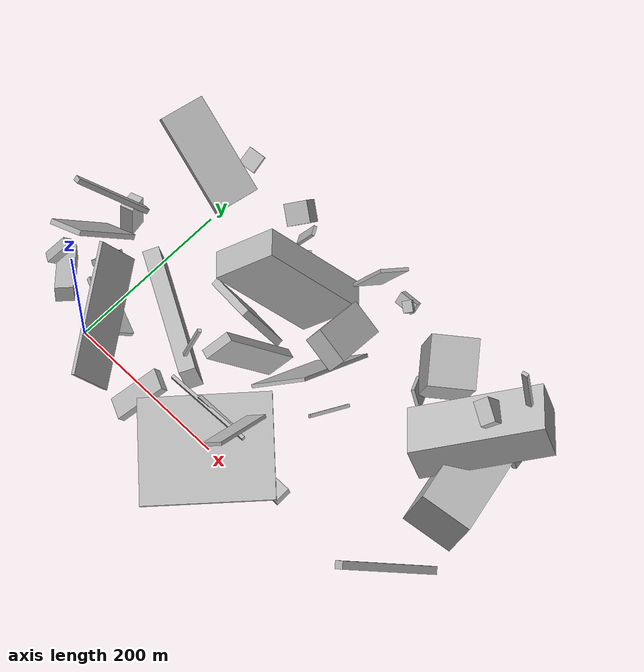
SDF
<sdf version="1.6">
 <world name="default">
  <model name="building_3">
   <static>0</static>
   <pose>-33.45436912153165 230.17576862455167 73.31850777323224 0.3727135399607054 0.11349348600995185 1.412369722167149</pose>
   <link name="link">
    <gravity>0</gravity>
    <pose>0 0 3.5 0 0 0</pose>
    <collision name="collision"><geometry><box><size>56 123 7</size></box></geometry></collision>
    <visual name="visual">
     <cast_shadows>0</cast_shadows>
     <geometry><box><size>56 123 7</size></box></geometry>
     <material>
      <script>
       <uri>model://HANNAS_wall/materials/scripts</uri>
       <uri>model://HANNAS_wall/materials/textures</uri>
       <name>vrc/HANNAS_wall</name>
      </script>
     </material>
    </visual>
   </link>
  </model>
  <model name="building_5">
   <static>0</static>
   <pose>142.85327700783975 39.52325204706015 145.23705242228914 1.280907169033283 0.01810961757745231 -0.5612329467302555</pose>
   <link name="link">
    <gravity>0</gravity>
    <pose>0 0 2.0 0 0 0</pose>
    <collision name="collision"><geometry><box><size>4 62 4</size></box></geometry></collision>
    <visual name="visual">
     <cast_shadows>0</cast_shadows>
     <geometry><box><size>4 62 4</size></box></geometry>
     <material>
      <script>
       <uri>model://HANNAS_wall/materials/scripts</uri>
       <uri>model://HANNAS_wall/materials/textures</uri>
       <name>vrc/HANNAS_wall</name>
      </script>
     </material>
    </visual>
   </link>
  </model>
  <model name="building_6">
   <static>0</static>
   <pose>78.80570475005405 77.71754553653787 50.86378117086528 -1.7116430482821283 -0.03186903567165388 2.6425681986003986</pose>
   <link name="link">
    <gravity>0</gravity>
    <pose>0 0 9.5 0 0 0</pose>
    <collision name="collision"><geometry><box><size>150 59 19</size></box></geometry></collision>
    <visual name="visual">
     <cast_shadows>0</cast_shadows>
     <geometry><box><size>150 59 19</size></box></geometry>
     <material>
      <script>
       <uri>model://HANNAS_wall/materials/scripts</uri>
       <uri>model://HANNAS_wall/materials/textures</uri>
       <name>vrc/HANNAS_wall</name>
      </script>
     </material>
    </visual>
   </link>
  </model>
  <model name="building_8">
   <static>0</static>
   <pose>438.2225889534224 142.45855588870796 53.16546000439365 -0.19534811506327818 0.21938282123979377 0.2018659422022886</pose>
   <link name="link">
    <gravity>0</gravity>
    <pose>0 0 32.5 0 0 0</pose>
    <collision name="collision"><geometry><box><size>61 130 65</size></box></geometry></collision>
    <visual name="visual">
     <cast_shadows>0</cast_shadows>
     <geometry><box><size>61 130 65</size></box></geometry>
     <material>
      <script>
       <uri>model://HANNAS_wall/materials/scripts</uri>
       <uri>model://HANNAS_wall/materials/textures</uri>
       <name>vrc/HANNAS_wall</name>
      </script>
     </material>
    </visual>
   </link>
  </model>
  <model name="building_9">
   <static>0</static>
   <pose>137.71556875061566 187.60716228195224 101.18792000894734 -1.4174596327392661 -0.8753817501219343 -2.4795868003958756</pose>
   <link name="link">
    <gravity>0</gravity>
    <pose>0 0 16.5 0 0 0</pose>
    <collision name="collision"><geometry><box><size>150 79 33</size></box></geometry></collision>
    <visual name="visual">
     <cast_shadows>0</cast_shadows>
     <geometry><box><size>150 79 33</size></box></geometry>
     <material>
      <script>
       <uri>model://HANNAS_wall/materials/scripts</uri>
       <uri>model://HANNAS_wall/materials/textures</uri>
       <name>vrc/HANNAS_wall</name>
      </script>
     </material>
    </visual>
   </link>
  </model>
  <model name="building_10">
   <static>0</static>
   <pose>-50.394521470647916 15.155284843621246 123.65515928356237 3.0385037584570775 -0.8558316451944581 1.093673327598814</pose>
   <link name="link">
    <gravity>0</gravity>
    <pose>0 0 5.5 0 0 0</pose>
    <collision name="collision"><geometry><box><size>34 12 11</size></box></geometry></collision>
    <visual name="visual">
     <cast_shadows>0</cast_shadows>
     <geometry><box><size>34 12 11</size></box></geometry>
     <material>
      <script>
       <uri>model://HANNAS_wall/materials/scripts</uri>
       <uri>model://HANNAS_wall/materials/textures</uri>
       <name>vrc/HANNAS_wall</name>
      </script>
     </material>
    </visual>
   </link>
  </model>
  <model name="building_12">
   <static>0</static>
   <pose>259.83359692414336 43.775442859317806 43.80373781763082 -2.0262682859598393 1.4196153840681005 1.9339024607335913</pose>
   <link name="link">
    <gravity>0</gravity>
    <pose>0 0 75.0 0 0 0</pose>
    <collision name="collision"><geometry><box><size>4 122 150</size></box></geometry></collision>
    <visual name="visual">
     <cast_shadows>0</cast_shadows>
     <geometry><box><size>4 122 150</size></box></geometry>
     <material>
      <script>
       <uri>model://HANNAS_wall/materials/scripts</uri>
       <uri>model://HANNAS_wall/materials/textures</uri>
       <name>vrc/HANNAS_wall</name>
      </script>
     </material>
    </visual>
   </link>
  </model>
  <model name="building_13">
   <static>0</static>
   <pose>382.1035436500278 132.18899601815727 113.01465682198119 0.7676785232947504 -1.1351767725572959 -3.1060503086673377</pose>
   <link name="link">
    <gravity>0</gravity>
    <pose>0 0 75.0 0 0 0</pose>
    <collision name="collision"><geometry><box><size>47 61 150</size></box></geometry></collision>
    <visual name="visual">
     <cast_shadows>0</cast_shadows>
     <geometry><box><size>47 61 150</size></box></geometry>
     <material>
      <script>
       <uri>model://HANNAS_wall/materials/scripts</uri>
       <uri>model://HANNAS_wall/materials/textures</uri>
       <name>vrc/HANNAS_wall</name>
      </script>
     </material>
    </visual>
   </link>
  </model>
  <model name="building_14">
   <static>0</static>
   <pose>-64.0757844598814 238.8846978420041 52.170263882776126 1.2139885623244253 0.008279703154189343 1.2634060405201886</pose>
   <link name="link">
    <gravity>0</gravity>
    <pose>0 0 3.5 0 0 0</pose>
    <collision name="collision"><geometry><box><size>4 17 7</size></box></geometry></collision>
    <visual name="visual">
     <cast_shadows>0</cast_shadows>
     <geometry><box><size>4 17 7</size></box></geometry>
     <material>
      <script>
       <uri>model://HANNAS_wall/materials/scripts</uri>
       <uri>model://HANNAS_wall/materials/textures</uri>
       <name>vrc/HANNAS_wall</name>
      </script>
     </material>
    </visual>
   </link>
  </model>
  <model name="building_15">
   <static>0</static>
   <pose>-20.40798361964243 66.2478191595332 70.85472420865415 -2.4741347746388413 -0.5559452527561605 2.6770076364858846</pose>
   <link name="link">
    <gravity>0</gravity>
    <pose>0 0 6.0 0 0 0</pose>
    <collision name="collision"><geometry><box><size>7 38 12</size></box></geometry></collision>
    <visual name="visual">
     <cast_shadows>0</cast_shadows>
     <geometry><box><size>7 38 12</size></box></geometry>
     <material>
      <script>
       <uri>model://HANNAS_wall/materials/scripts</uri>
       <uri>model://HANNAS_wall/materials/textures</uri>
       <name>vrc/HANNAS_wall</name>
      </script>
     </material>
    </visual>
   </link>
  </model>
  <model name="building_17">
   <static>0</static>
   <pose>191.00007537196797 24.31515056236701 60.62441523934734 1.7347715206480638 0.3952863882778992 0.12440402981081881</pose>
   <link name="link">
    <gravity>0</gravity>
    <pose>0 0 2.0 0 0 0</pose>
    <collision name="collision"><geometry><box><size>50 10 4</size></box></geometry></collision>
    <visual name="visual">
     <cast_shadows>0</cast_shadows>
     <geometry><box><size>50 10 4</size></box></geometry>
     <material>
      <script>
       <uri>model://HANNAS_wall/materials/scripts</uri>
       <uri>model://HANNAS_wall/materials/textures</uri>
       <name>vrc/HANNAS_wall</name>
      </script>
     </material>
    </visual>
   </link>
  </model>
  <model name="building_18">
   <static>0</static>
   <pose>-66.0371015514298 129.370810808356 28.419078440074898 1.4527831985671145 0.2947839125589903 1.827157090015469</pose>
   <link name="link">
    <gravity>0</gravity>
    <pose>0 0 8.0 0 0 0</pose>
    <collision name="collision"><geometry><box><size>24 40 16</size></box></geometry></collision>
    <visual name="visual">
     <cast_shadows>0</cast_shadows>
     <geometry><box><size>24 40 16</size></box></geometry>
     <material>
      <script>
       <uri>model://HANNAS_wall/materials/scripts</uri>
       <uri>model://HANNAS_wall/materials/textures</uri>
       <name>vrc/HANNAS_wall</name>
      </script>
     </material>
    </visual>
   </link>
  </model>
  <model name="building_20">
   <static>0</static>
   <pose>244.96714735777 272.73651480837 40.046867954195726 0.024972503453130207 0.6855258279380012 -1.500709517938705</pose>
   <link name="link">
    <gravity>0</gravity>
    <pose>0 0 5.5 0 0 0</pose>
    <collision name="collision"><geometry><box><size>14 23 11</size></box></geometry></collision>
    <visual name="visual">
     <cast_shadows>0</cast_shadows>
     <geometry><box><size>14 23 11</size></box></geometry>
     <material>
      <script>
       <uri>model://HANNAS_wall/materials/scripts</uri>
       <uri>model://HANNAS_wall/materials/textures</uri>
       <name>vrc/HANNAS_wall</name>
      </script>
     </material>
    </visual>
   </link>
  </model>
  <model name="building_25">
   <static>0</static>
   <pose>133.73516469636587 227.17849984466665 34.35926892064466 -1.438960402990991 0.414709281429838 2.4201922617114815</pose>
   <link name="link">
    <gravity>0</gravity>
    <pose>0 0 37.0 0 0 0</pose>
    <collision name="collision"><geometry><box><size>20 31 74</size></box></geometry></collision>
    <visual name="visual">
     <cast_shadows>0</cast_shadows>
     <geometry><box><size>20 31 74</size></box></geometry>
     <material>
      <script>
       <uri>model://HANNAS_wall/materials/scripts</uri>
       <uri>model://HANNAS_wall/materials/textures</uri>
       <name>vrc/HANNAS_wall</name>
      </script>
     </material>
    </visual>
   </link>
  </model>
  <model name="building_26">
   <static>0</static>
   <pose>228.8736052841642 1.0478517770115587 110.26314084660282 0.8078980128127189 -0.6167805266581403 2.644276088023601</pose>
   <link name="link">
    <gravity>0</gravity>
    <pose>0 0 12.5 0 0 0</pose>
    <collision name="collision"><geometry><box><size>4 85 25</size></box></geometry></collision>
    <visual name="visual">
     <cast_shadows>0</cast_shadows>
     <geometry><box><size>4 85 25</size></box></geometry>
     <material>
      <script>
       <uri>model://HANNAS_wall/materials/scripts</uri>
       <uri>model://HANNAS_wall/materials/textures</uri>
       <name>vrc/HANNAS_wall</name>
      </script>
     </material>
    </visual>
   </link>
  </model>
  <model name="building_27">
   <static>0</static>
   <pose>239.88282216955542 196.78344996852005 102.1052518001012 -0.8237689871815034 -0.3337377381782416 3.0443244534692817</pose>
   <link name="link">
    <gravity>0</gravity>
    <pose>0 0 46.5 0 0 0</pose>
    <collision name="collision"><geometry><box><size>42 22 93</size></box></geometry></collision>
    <visual name="visual">
     <cast_shadows>0</cast_shadows>
     <geometry><box><size>42 22 93</size></box></geometry>
     <material>
      <script>
       <uri>model://HANNAS_wall/materials/scripts</uri>
       <uri>model://HANNAS_wall/materials/textures</uri>
       <name>vrc/HANNAS_wall</name>
      </script>
     </material>
    </visual>
   </link>
  </model>
  <model name="building_31">
   <static>0</static>
   <pose>-11.94142339313771 277.8048038063885 25.425345979281822 -3.086540812013531 0.388449493293621 -1.4747525443146723</pose>
   <link name="link">
    <gravity>0</gravity>
    <pose>0 0 2.0 0 0 0</pose>
    <collision name="collision"><geometry><box><size>22 22 4</size></box></geometry></collision>
    <visual name="visual">
     <cast_shadows>0</cast_shadows>
     <geometry><box><size>22 22 4</size></box></geometry>
     <material>
      <script>
       <uri>model://HANNAS_wall/materials/scripts</uri>
       <uri>model://HANNAS_wall/materials/textures</uri>
       <name>vrc/HANNAS_wall</name>
      </script>
     </material>
    </visual>
   </link>
  </model>
  <model name="building_33">
   <static>0</static>
   <pose>326.832822268848 204.9084949678304 31.7606275015616 2.00756288357497 0.6879197553792322 -0.4193749211155299</pose>
   <link name="link">
    <gravity>0</gravity>
    <pose>0 0 2.0 0 0 0</pose>
    <collision name="collision"><geometry><box><size>25 41 4</size></box></geometry></collision>
    <visual name="visual">
     <cast_shadows>0</cast_shadows>
     <geometry><box><size>25 41 4</size></box></geometry>
     <material>
      <script>
       <uri>model://HANNAS_wall/materials/scripts</uri>
       <uri>model://HANNAS_wall/materials/textures</uri>
       <name>vrc/HANNAS_wall</name>
      </script>
     </material>
    </visual>
   </link>
  </model>
  <model name="building_34">
   <static>0</static>
   <pose>270.6407736882026 119.23164608504737 24.9018740931401 1.1152568461334695 -0.4391605763867785 -1.8981417527022857</pose>
   <link name="link">
    <gravity>0</gravity>
    <pose>0 0 2.0 0 0 0</pose>
    <collision name="collision"><geometry><box><size>54 4 4</size></box></geometry></collision>
    <visual name="visual">
     <cast_shadows>0</cast_shadows>
     <geometry><box><size>54 4 4</size></box></geometry>
     <material>
      <script>
       <uri>model://HANNAS_wall/materials/scripts</uri>
       <uri>model://HANNAS_wall/materials/textures</uri>
       <name>vrc/HANNAS_wall</name>
      </script>
     </material>
    </visual>
   </link>
  </model>
  <model name="building_35">
   <static>0</static>
   <pose>270.94781986636383 13.052369464315523 11.395756546139989 1.9822113664953187 0.6967227927832168 2.1307166548633907</pose>
   <link name="link">
    <gravity>0</gravity>
    <pose>0 0 2.0 0 0 0</pose>
    <collision name="collision"><geometry><box><size>10 12 4</size></box></geometry></collision>
    <visual name="visual">
     <cast_shadows>0</cast_shadows>
     <geometry><box><size>10 12 4</size></box></geometry>
     <material>
      <script>
       <uri>model://HANNAS_wall/materials/scripts</uri>
       <uri>model://HANNAS_wall/materials/textures</uri>
       <name>vrc/HANNAS_wall</name>
      </script>
     </material>
    </visual>
   </link>
  </model>
  <model name="building_36">
   <static>0</static>
   <pose>453.1954852269646 20.129060084580807 68.06532579358111 1.097172381701563 -0.767306653565728 -2.0926840075416493</pose>
   <link name="link">
    <gravity>0</gravity>
    <pose>0 0 4.5 0 0 0</pose>
    <collision name="collision"><geometry><box><size>150 11 9</size></box></geometry></collision>
    <visual name="visual">
     <cast_shadows>0</cast_shadows>
     <geometry><box><size>150 11 9</size></box></geometry>
     <material>
      <script>
       <uri>model://HANNAS_wall/materials/scripts</uri>
       <uri>model://HANNAS_wall/materials/textures</uri>
       <name>vrc/HANNAS_wall</name>
      </script>
     </material>
    </visual>
   </link>
  </model>
  <model name="building_39">
   <static>0</static>
   <pose>45.47394271036285 16.29023666339934 72.29772831672148 0.4427328354410417 0.20242929763786452 -0.98356748038105</pose>
   <link name="link">
    <gravity>0</gravity>
    <pose>0 0 34.5 0 0 0</pose>
    <collision name="collision"><geometry><box><size>150 4 69</size></box></geometry></collision>
    <visual name="visual">
     <cast_shadows>0</cast_shadows>
     <geometry><box><size>150 4 69</size></box></geometry>
     <material>
      <script>
       <uri>model://HANNAS_wall/materials/scripts</uri>
       <uri>model://HANNAS_wall/materials/textures</uri>
       <name>vrc/HANNAS_wall</name>
      </script>
     </material>
    </visual>
   </link>
  </model>
  <model name="building_40">
   <static>0</static>
   <pose>110.24163886880086 14.376855569478636 26.228045286584337 2.9188781130978945 0.969890388594586 0.9381478057372542</pose>
   <link name="link">
    <gravity>0</gravity>
    <pose>0 0 32.5 0 0 0</pose>
    <collision name="collision"><geometry><box><size>11 27 65</size></box></geometry></collision>
    <visual name="visual">
     <cast_shadows>0</cast_shadows>
     <geometry><box><size>11 27 65</size></box></geometry>
     <material>
      <script>
       <uri>model://HANNAS_wall/materials/scripts</uri>
       <uri>model://HANNAS_wall/materials/textures</uri>
       <name>vrc/HANNAS_wall</name>
      </script>
     </material>
    </visual>
   </link>
  </model>
  <model name="building_41">
   <static>0</static>
   <pose>246.57365644492876 113.45532957813174 111.28250905697652 0.8184288268312675 -0.8300700500004677 -1.5448914987563551</pose>
   <link name="link">
    <gravity>0</gravity>
    <pose>0 0 2.0 0 0 0</pose>
    <collision name="collision"><geometry><box><size>150 65 4</size></box></geometry></collision>
    <visual name="visual">
     <cast_shadows>0</cast_shadows>
     <geometry><box><size>150 65 4</size></box></geometry>
     <material>
      <script>
       <uri>model://HANNAS_wall/materials/scripts</uri>
       <uri>model://HANNAS_wall/materials/textures</uri>
       <name>vrc/HANNAS_wall</name>
      </script>
     </material>
    </visual>
   </link>
  </model>
  <model name="building_50">
   <static>0</static>
   <pose>437.1604722187999 253.6328850472729 39.9484526456327 0.5532638104490185 0.698237583800408 -0.7585751909633459</pose>
   <link name="link">
    <gravity>0</gravity>
    <pose>0 0 15.0 0 0 0</pose>
    <collision name="collision"><geometry><box><size>4 47 30</size></box></geometry></collision>
    <visual name="visual">
     <cast_shadows>0</cast_shadows>
     <geometry><box><size>4 47 30</size></box></geometry>
     <material>
      <script>
       <uri>model://HANNAS_wall/materials/scripts</uri>
       <uri>model://HANNAS_wall/materials/textures</uri>
       <name>vrc/HANNAS_wall</name>
      </script>
     </material>
    </visual>
   </link>
  </model>
  <model name="building_51">
   <static>0</static>
   <pose>16.840957755354935 42.19775697745645 30.89551356412005 -0.15271375147019264 -0.830430587243982 1.295936059310677</pose>
   <link name="link">
    <gravity>0</gravity>
    <pose>0 0 15.0 0 0 0</pose>
    <collision name="collision"><geometry><box><size>5 77 30</size></box></geometry></collision>
    <visual name="visual">
     <cast_shadows>0</cast_shadows>
     <geometry><box><size>5 77 30</size></box></geometry>
     <material>
      <script>
       <uri>model://HANNAS_wall/materials/scripts</uri>
       <uri>model://HANNAS_wall/materials/textures</uri>
       <name>vrc/HANNAS_wall</name>
      </script>
     </material>
    </visual>
   </link>
  </model>
  <model name="building_54">
   <static>0</static>
   <pose>-22.248167345837576 85.38354566173288 107.0346078106322 -0.3154618827793546 -0.5306961524638659 1.9892491553088674</pose>
   <link name="link">
    <gravity>0</gravity>
    <pose>0 0 57.0 0 0 0</pose>
    <collision name="collision"><geometry><box><size>6 39 114</size></box></geometry></collision>
    <visual name="visual">
     <cast_shadows>0</cast_shadows>
     <geometry><box><size>6 39 114</size></box></geometry>
     <material>
      <script>
       <uri>model://HANNAS_wall/materials/scripts</uri>
       <uri>model://HANNAS_wall/materials/textures</uri>
       <name>vrc/HANNAS_wall</name>
      </script>
     </material>
    </visual>
   </link>
  </model>
  <model name="building_55">
   <static>0</static>
   <pose>157.23955528571136 130.60337339528465 58.52618783132817 -0.4344776471859004 -0.3163866141811771 1.536075112365155</pose>
   <link name="link">
    <gravity>0</gravity>
    <pose>0 0 37.5 0 0 0</pose>
    <collision name="collision"><geometry><box><size>9 66 75</size></box></geometry></collision>
    <visual name="visual">
     <cast_shadows>0</cast_shadows>
     <geometry><box><size>9 66 75</size></box></geometry>
     <material>
      <script>
       <uri>model://HANNAS_wall/materials/scripts</uri>
       <uri>model://HANNAS_wall/materials/textures</uri>
       <name>vrc/HANNAS_wall</name>
      </script>
     </material>
    </visual>
   </link>
  </model>
  <model name="building_56">
   <static>0</static>
   <pose>106.90732638956509 260.04909562799025 39.860430735552214 -3.1372942963242023 -0.4521366235024175 -2.6346516332597267</pose>
   <link name="link">
    <gravity>0</gravity>
    <pose>0 0 20.0 0 0 0</pose>
    <collision name="collision"><geometry><box><size>4 12 40</size></box></geometry></collision>
    <visual name="visual">
     <cast_shadows>0</cast_shadows>
     <geometry><box><size>4 12 40</size></box></geometry>
     <material>
      <script>
       <uri>model://HANNAS_wall/materials/scripts</uri>
       <uri>model://HANNAS_wall/materials/textures</uri>
       <name>vrc/HANNAS_wall</name>
      </script>
     </material>
    </visual>
   </link>
  </model>
  <model name="building_64">
   <static>0</static>
   <pose>291.5835570255542 12.83187987946849 26.290545469917898 -2.9939114943846827 -0.1045623364060005 -0.01999349584362038</pose>
   <link name="link">
    <gravity>0</gravity>
    <pose>0 0 6.5 0 0 0</pose>
    <collision name="collision"><geometry><box><size>22 20 13</size></box></geometry></collision>
    <visual name="visual">
     <cast_shadows>0</cast_shadows>
     <geometry><box><size>22 20 13</size></box></geometry>
     <material>
      <script>
       <uri>model://HANNAS_wall/materials/scripts</uri>
       <uri>model://HANNAS_wall/materials/textures</uri>
       <name>vrc/HANNAS_wall</name>
      </script>
     </material>
    </visual>
   </link>
  </model>
  <model name="building_65">
   <static>0</static>
   <pose>182.93157826682017 18.321326301247502 62.22393782316861 0.020676602579649934 -0.10282146186185967 0.0067973812306032</pose>
   <link name="link">
    <gravity>0</gravity>
    <pose>0 0 2.5 0 0 0</pose>
    <collision name="collision"><geometry><box><size>111 4 5</size></box></geometry></collision>
    <visual name="visual">
     <cast_shadows>0</cast_shadows>
     <geometry><box><size>111 4 5</size></box></geometry>
     <material>
      <script>
       <uri>model://HANNAS_wall/materials/scripts</uri>
       <uri>model://HANNAS_wall/materials/textures</uri>
       <name>vrc/HANNAS_wall</name>
      </script>
     </material>
    </visual>
   </link>
  </model>
  <model name="building_66">
   <static>0</static>
   <pose>429.5116943215653 204.00518355924999 137.69905727049303 -0.2400959185151206 -1.0823499533695762 -1.8726050072217053</pose>
   <link name="link">
    <gravity>0</gravity>
    <pose>0 0 8.5 0 0 0</pose>
    <collision name="collision"><geometry><box><size>96 28 17</size></box></geometry></collision>
    <visual name="visual">
     <cast_shadows>0</cast_shadows>
     <geometry><box><size>96 28 17</size></box></geometry>
     <material>
      <script>
       <uri>model://HANNAS_wall/materials/scripts</uri>
       <uri>model://HANNAS_wall/materials/textures</uri>
       <name>vrc/HANNAS_wall</name>
      </script>
     </material>
    </visual>
   </link>
  </model>
  <model name="building_68">
   <static>0</static>
   <pose>359.2440425488722 250.90553018958678 73.91918966727337 -1.2449430452115886 1.294038305822794 2.5936014349152168</pose>
   <link name="link">
    <gravity>0</gravity>
    <pose>0 0 26.5 0 0 0</pose>
    <collision name="collision"><geometry><box><size>104 57 53</size></box></geometry></collision>
    <visual name="visual">
     <cast_shadows>0</cast_shadows>
     <geometry><box><size>104 57 53</size></box></geometry>
     <material>
      <script>
       <uri>model://HANNAS_wall/materials/scripts</uri>
       <uri>model://HANNAS_wall/materials/textures</uri>
       <name>vrc/HANNAS_wall</name>
      </script>
     </material>
    </visual>
   </link>
  </model>
  <model name="building_69">
   <static>0</static>
   <pose>68.03352815188109 258.8002614476479 25.219884027561577 -1.0705643233258515 0.42149716040439594 -0.5989717283088428</pose>
   <link name="link">
    <gravity>0</gravity>
    <pose>0 0 14.5 0 0 0</pose>
    <collision name="collision"><geometry><box><size>26 22 29</size></box></geometry></collision>
    <visual name="visual">
     <cast_shadows>0</cast_shadows>
     <geometry><box><size>26 22 29</size></box></geometry>
     <material>
      <script>
       <uri>model://HANNAS_wall/materials/scripts</uri>
       <uri>model://HANNAS_wall/materials/textures</uri>
       <name>vrc/HANNAS_wall</name>
      </script>
     </material>
    </visual>
   </link>
  </model>
  <model name="building_70">
   <static>0</static>
   <pose>185.13626506435813 61.33379834015414 122.68681879601094 -0.008458437390646853 -1.0587397787302408 -1.860332602612014</pose>
   <link name="link">
    <gravity>0</gravity>
    <pose>0 0 17.0 0 0 0</pose>
    <collision name="collision"><geometry><box><size>150 11 34</size></box></geometry></collision>
    <visual name="visual">
     <cast_shadows>0</cast_shadows>
     <geometry><box><size>150 11 34</size></box></geometry>
     <material>
      <script>
       <uri>model://HANNAS_wall/materials/scripts</uri>
       <uri>model://HANNAS_wall/materials/textures</uri>
       <name>vrc/HANNAS_wall</name>
      </script>
     </material>
    </visual>
   </link>
  </model>
  <model name="building_74">
   <static>0</static>
   <pose>-58.03424645830021 16.405476529305503 47.48447964688677 1.517322057015364 -1.0184776983119486 2.44020842150722</pose>
   <link name="link">
    <gravity>0</gravity>
    <pose>0 0 10.5 0 0 0</pose>
    <collision name="collision"><geometry><box><size>18 86 21</size></box></geometry></collision>
    <visual name="visual">
     <cast_shadows>0</cast_shadows>
     <geometry><box><size>18 86 21</size></box></geometry>
     <material>
      <script>
       <uri>model://HANNAS_wall/materials/scripts</uri>
       <uri>model://HANNAS_wall/materials/textures</uri>
       <name>vrc/HANNAS_wall</name>
      </script>
     </material>
    </visual>
   </link>
  </model>
  <model name="building_78">
   <static>0</static>
   <pose>222.16075441489454 247.6167684885321 108.3114195039276 -1.1173064275122875 -1.0498155935153997 0.576415542600208</pose>
   <link name="link">
    <gravity>0</gravity>
    <pose>0 0 2.0 0 0 0</pose>
    <collision name="collision"><geometry><box><size>58 37 4</size></box></geometry></collision>
    <visual name="visual">
     <cast_shadows>0</cast_shadows>
     <geometry><box><size>58 37 4</size></box></geometry>
     <material>
      <script>
       <uri>model://HANNAS_wall/materials/scripts</uri>
       <uri>model://HANNAS_wall/materials/textures</uri>
       <name>vrc/HANNAS_wall</name>
      </script>
     </material>
    </visual>
   </link>
  </model>
  <model name="building_79">
   <static>0</static>
   <pose>459.15652863616 235.1493520640784 124.41751227240098 0.045164042748512774 -0.1332542318398596 0.18774359432469098</pose>
   <link name="link">
    <gravity>0</gravity>
    <pose>0 0 64.5 0 0 0</pose>
    <collision name="collision"><geometry><box><size>7 4 129</size></box></geometry></collision>
    <visual name="visual">
     <cast_shadows>0</cast_shadows>
     <geometry><box><size>7 4 129</size></box></geometry>
     <material>
      <script>
       <uri>model://HANNAS_wall/materials/scripts</uri>
       <uri>model://HANNAS_wall/materials/textures</uri>
       <name>vrc/HANNAS_wall</name>
      </script>
     </material>
    </visual>
   </link>
  </model>
  <model name="building_80">
   <static>0</static>
   <pose>-43.32765806250804 141.60609799082079 46.821470250579836 -0.68937989352437 -0.5277235233117976 1.7238308931679902</pose>
   <link name="link">
    <gravity>0</gravity>
    <pose>0 0 50.0 0 0 0</pose>
    <collision name="collision"><geometry><box><size>6 11 100</size></box></geometry></collision>
    <visual name="visual">
     <cast_shadows>0</cast_shadows>
     <geometry><box><size>6 11 100</size></box></geometry>
     <material>
      <script>
       <uri>model://HANNAS_wall/materials/scripts</uri>
       <uri>model://HANNAS_wall/materials/textures</uri>
       <name>vrc/HANNAS_wall</name>
      </script>
     </material>
    </visual>
   </link>
  </model>
  <model name="building_81">
   <static>0</static>
   <pose>270.69932651934425 236.51007069631885 144.2560449597426 1.9105811477353802 -0.3205187066332042 0.8376926457987759</pose>
   <link name="link">
    <gravity>0</gravity>
    <pose>0 0 6.5 0 0 0</pose>
    <collision name="collision"><geometry><box><size>11 8 13</size></box></geometry></collision>
    <visual name="visual">
     <cast_shadows>0</cast_shadows>
     <geometry><box><size>11 8 13</size></box></geometry>
     <material>
      <script>
       <uri>model://HANNAS_wall/materials/scripts</uri>
       <uri>model://HANNAS_wall/materials/textures</uri>
       <name>vrc/HANNAS_wall</name>
      </script>
     </material>
    </visual>
   </link>
  </model>
  <model name="building_82">
   <static>0</static>
   <pose>446.42566214159956 226.94382506786545 29.875285263867816 -2.5526512063678193 -0.3278148527443379 -1.375992054937601</pose>
   <link name="link">
    <gravity>0</gravity>
    <pose>0 0 9.5 0 0 0</pose>
    <collision name="collision"><geometry><box><size>12 6 19</size></box></geometry></collision>
    <visual name="visual">
     <cast_shadows>0</cast_shadows>
     <geometry><box><size>12 6 19</size></box></geometry>
     <material>
      <script>
       <uri>model://HANNAS_wall/materials/scripts</uri>
       <uri>model://HANNAS_wall/materials/textures</uri>
       <name>vrc/HANNAS_wall</name>
      </script>
     </material>
    </visual>
   </link>
  </model>
 </world>
</sdf>
